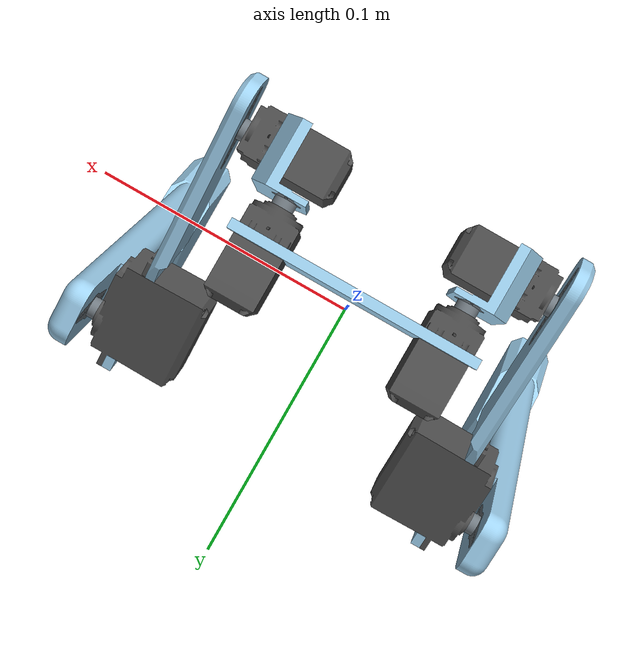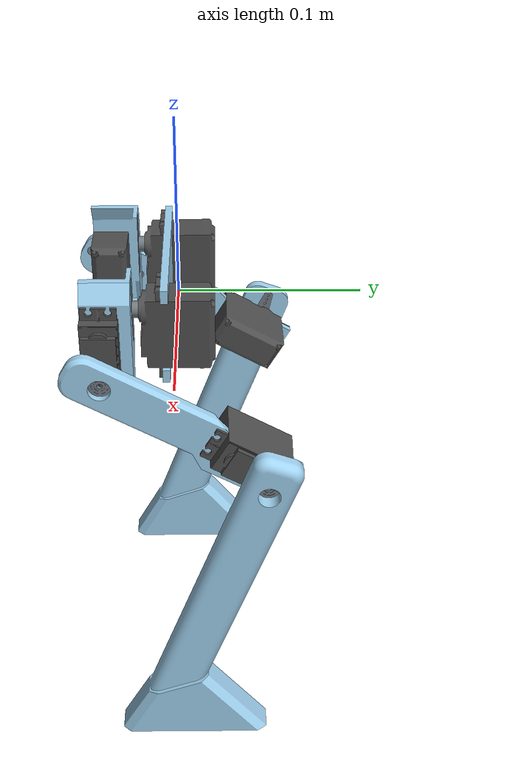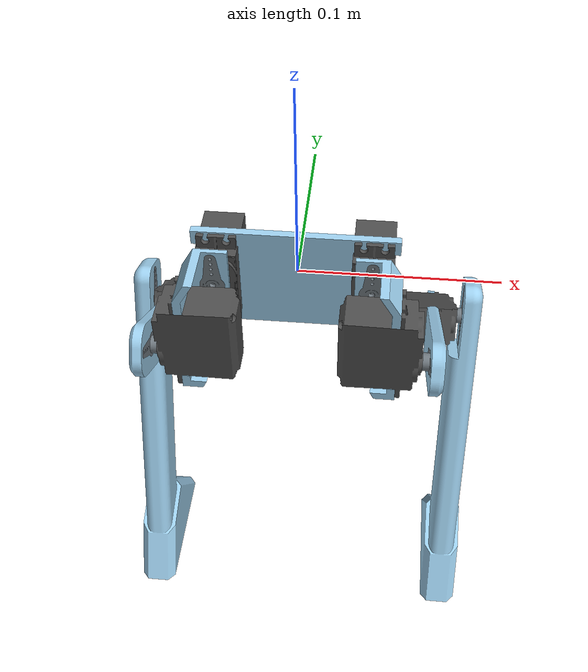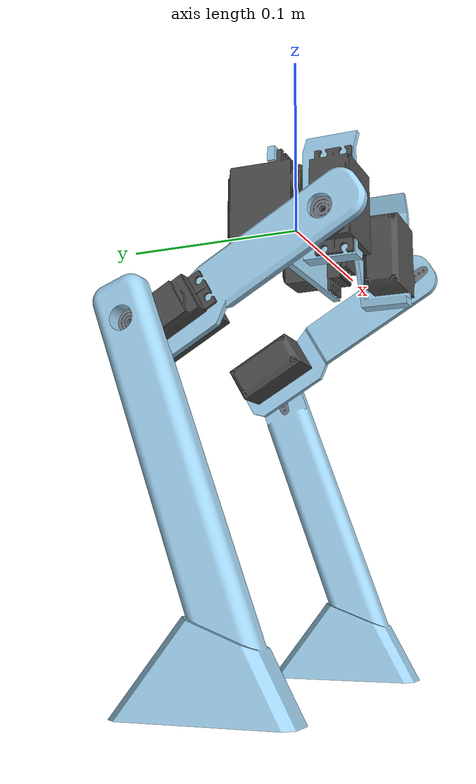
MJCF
<?xml version="1.0" ?>
<!-- Generated using onshape-to-robot -->
<!-- Onshape https://cad.onshape.com/documents/d7eef6374aced10980d655e0/w/a95c1ea2fcec3b2e30db9b5b/e/12a2a0fd368dedeacabed258 -->
<mujoco model="robot">
  <compiler angle="radian" meshdir="assets" autolimits="true"/>
  <default>
    <default class="robot">
      <joint frictionloss="0.1" armature="0.005"/>
      <position kp="50" dampratio="1"/>
      <default class="visual">
        <geom type="mesh" contype="0" conaffinity="0" group="2"/>
      </default>
      <default class="collision">
        <geom group="3"/>
      </default>
    </default>
  </default>
  <worldbody>
    <!-- Link body -->
    <body name="body" pos="0 0 0" quat="1 0 0 0" childclass="robot">
      <freejoint name="body_freejoint"/>
      <inertial pos="1.60791e-05 -0.000291688 4.34745e-05" mass="0.128457" fullinertia="3.43693e-05 0.000188026 0.000180806 0 0 8.1445e-08"/>
      <!-- Part mg996r -->
      <geom type="mesh" class="visual" pos="0.0375161 0.0199877 0.0203585" quat="0.5 0.5 0.5 -0.5" mesh="mg996r" material="mg996r_material"/>
      <geom type="mesh" class="collision" pos="0.0375161 0.0199877 0.0203585" quat="0.5 0.5 0.5 -0.5" mesh="mg996r" material="mg996r_material"/>
      <!-- Part body -->
      <geom type="mesh" class="visual" pos="1.60791e-05 -0.00400633 -0.0274906" quat="1 0 0 0" mesh="body" material="body_material"/>
      <geom type="mesh" class="collision" pos="1.60791e-05 -0.00400633 -0.0274906" quat="1 0 0 0" mesh="body" material="body_material"/>
      <!-- Part mg996r_2 -->
      <geom type="mesh" class="visual" pos="-0.0374839 0.0199877 0.0203585" quat="0.5 0.5 0.5 -0.5" mesh="mg996r" material="mg996r_material"/>
      <geom type="mesh" class="collision" pos="-0.0374839 0.0199877 0.0203585" quat="0.5 0.5 0.5 -0.5" mesh="mg996r" material="mg996r_material"/>
      <!-- Link leg_hip_l -->
      <body name="leg_hip_l" pos="0.0375161 -0.0200063 0.0100094" quat="0.5 -0.5 0.5 0.5">
        <!-- Joint from body to leg_hip_l -->
        <joint axis="0 0 1" name="hip1-l" type="hinge" range="-1.5707963267949 1.570796326794893"/>
        <inertial pos="0.0168278 -0.00558285 -0.0185862" mass="0.0633239" fullinertia="9.5947e-06 1.46442e-05 1.84718e-05 8.7959e-08 4.02355e-07 -2.065e-08"/>
        <!-- Part mg996r_3 -->
        <geom type="mesh" class="visual" pos="0.0378491 0.013994 -0.01975" quat="0 0 -0.707107 0.707107" mesh="mg996r" material="mg996r_material"/>
        <geom type="mesh" class="collision" pos="0.0378491 0.013994 -0.01975" quat="0 0 -0.707107 0.707107" mesh="mg996r" material="mg996r_material"/>
        <!-- Part mg996r_straight -->
        <geom type="mesh" class="visual" pos="0 0 -0.00575" quat="0.5 0.5 0.5 0.5" mesh="mg996r_straight" material="mg996r_straight_material"/>
        <geom type="mesh" class="collision" pos="0 0 -0.00575" quat="0.5 0.5 0.5 0.5" mesh="mg996r_straight" material="mg996r_straight_material"/>
        <!-- Part leg_hip_l -->
        <geom type="mesh" class="visual" pos="0 0 -0.00575" quat="0.5 0.5 -0.5 -0.5" mesh="leg_hip_l" material="leg_hip_l_material"/>
        <geom type="mesh" class="collision" pos="0 0 -0.00575" quat="0.5 0.5 -0.5 -0.5" mesh="leg_hip_l" material="leg_hip_l_material"/>
        <!-- Link leg_upper_l -->
        <body name="leg_upper_l" pos="0.0275 -0.026 -0.01975" quat="0 -0 -0.707107 -0.707107">
          <!-- Joint from leg_hip_l to leg_upper_l -->
          <joint axis="0 0 1" name="hip2-l" type="hinge" range="-0.5217220817381962 2.619870571851597"/>
          <inertial pos="-0.0383201 0.0659294 -0.00253348" mass="0.0743473" fullinertia="6.46873e-05 2.85406e-05 7.93556e-05 3.18196e-05 1.98232e-06 -3.73235e-06"/>
          <!-- Part mg996r_4 -->
          <geom type="mesh" class="visual" pos="-0.0554935 0.0965355 0.018244" quat="0 -0.865556 0.500812 0" mesh="mg996r" material="mg996r_material"/>
          <geom type="mesh" class="collision" pos="-0.0554935 0.0965355 0.018244" quat="0 -0.865556 0.500812 0" mesh="mg996r" material="mg996r_material"/>
          <!-- Part mg996r_straight_2 -->
          <geom type="mesh" class="visual" pos="0 0 -0.00575" quat="0.683184 0.683184 0.182372 0.182372" mesh="mg996r_straight" material="mg996r_straight_material"/>
          <geom type="mesh" class="collision" pos="0 0 -0.00575" quat="0.683184 0.683184 0.182372 0.182372" mesh="mg996r_straight" material="mg996r_straight_material"/>
          <!-- Part leg_upper_l -->
          <geom type="mesh" class="visual" pos="0 0 -0.00575" quat="0.61204 0.354128 0.61204 -0.354128" mesh="leg_upper_l" material="leg_upper_l_material"/>
          <geom type="mesh" class="collision" pos="0 0 -0.00575" quat="0.61204 0.354128 0.61204 -0.354128" mesh="leg_upper_l" material="leg_upper_l_material"/>
          <!-- Link leg_lower_l -->
          <body name="leg_lower_l" pos="-0.0503358 0.0875632 -0.02175" quat="0.865556 0 0 -0.500812">
            <!-- Joint from leg_upper_l to leg_lower_l -->
            <joint axis="0 0 1" name="knee-l" type="hinge" range="-1.4000463710821596 1.7415462825076335"/>
            <inertial pos="-0.024134 -0.106838 -0.0059757" mass="0.134801" fullinertia="0.000432979 5.69911e-05 0.000483077 -0.000106639 7.27547e-07 3.21149e-06"/>
            <!-- Part leg_lower_l -->
            <geom type="mesh" class="visual" pos="-0 -0 -0.00575" quat="0.540815 -0.455543 0.540815 0.455543" mesh="leg_lower_l" material="leg_lower_l_material"/>
            <geom type="mesh" class="collision" pos="-0 -0 -0.00575" quat="0.540815 -0.455543 0.540815 0.455543" mesh="leg_lower_l" material="leg_lower_l_material"/>
            <!-- Part mg996r_straight_3 -->
            <geom type="mesh" class="visual" pos="0 0 -0.00575" quat="0.0602959 0.0602959 0.704531 0.704531" mesh="mg996r_straight" material="mg996r_straight_material"/>
            <geom type="mesh" class="collision" pos="0 0 -0.00575" quat="0.0602959 0.0602959 0.704531 0.704531" mesh="mg996r_straight" material="mg996r_straight_material"/>
          </body>
        </body>
      </body>
      <!-- Link leg_hip_r -->
      <body name="leg_hip_r" pos="-0.0374839 -0.0200063 0.0100094" quat="0.5 -0.5 0.5 0.5">
        <!-- Joint from body to leg_hip_r -->
        <joint axis="0 0 1" name="hip1-r" type="hinge" range="-1.5707963267948974 1.5707963267948957"/>
        <inertial pos="0.0168278 0.00558285 -0.0185862" mass="0.0633239" fullinertia="9.5947e-06 1.46442e-05 1.84718e-05 -8.7959e-08 4.02355e-07 2.065e-08"/>
        <!-- Part leg_hip_r -->
        <geom type="mesh" class="visual" pos="0 -0.016 -0.00575" quat="0.5 0.5 -0.5 -0.5" mesh="leg_hip_r" material="leg_hip_r_material"/>
        <geom type="mesh" class="collision" pos="0 -0.016 -0.00575" quat="0.5 0.5 -0.5 -0.5" mesh="leg_hip_r" material="leg_hip_r_material"/>
        <!-- Part mg996r_5 -->
        <geom type="mesh" class="visual" pos="0.0378491 -0.013994 -0.01975" quat="0 0 -0.707107 -0.707107" mesh="mg996r" material="mg996r_material"/>
        <geom type="mesh" class="collision" pos="0.0378491 -0.013994 -0.01975" quat="0 0 -0.707107 -0.707107" mesh="mg996r" material="mg996r_material"/>
        <!-- Part mg996r_straight_4 -->
        <geom type="mesh" class="visual" pos="0 0 -0.00575" quat="0.5 0.5 -0.5 -0.5" mesh="mg996r_straight" material="mg996r_straight_material"/>
        <geom type="mesh" class="collision" pos="0 0 -0.00575" quat="0.5 0.5 -0.5 -0.5" mesh="mg996r_straight" material="mg996r_straight_material"/>
        <!-- Link leg_upper_r -->
        <body name="leg_upper_r" pos="0.0275 0.026 -0.01975" quat="0 -0 0.707107 -0.707107">
          <!-- Joint from leg_hip_r to leg_upper_r -->
          <joint axis="0 0 1" name="hip2-r" type="hinge" range="-2.619870571851599 0.521722081738194"/>
          <inertial pos="-0.0383201 -0.0659294 -0.00253348" mass="0.0743473" fullinertia="6.46873e-05 2.85406e-05 7.93556e-05 -3.18196e-05 1.98232e-06 3.73235e-06"/>
          <!-- Part mg996r_straight_5 -->
          <geom type="mesh" class="visual" pos="-0 0 -0.00575" quat="0.182372 0.182372 0.683184 0.683184" mesh="mg996r_straight" material="mg996r_straight_material"/>
          <geom type="mesh" class="collision" pos="-0 0 -0.00575" quat="0.182372 0.182372 0.683184 0.683184" mesh="mg996r_straight" material="mg996r_straight_material"/>
          <!-- Part mg996r_6 -->
          <geom type="mesh" class="visual" pos="-0.0554935 -0.0965355 0.018244" quat="0 -0.865556 -0.500812 0" mesh="mg996r" material="mg996r_material"/>
          <geom type="mesh" class="collision" pos="-0.0554935 -0.0965355 0.018244" quat="0 -0.865556 -0.500812 0" mesh="mg996r" material="mg996r_material"/>
          <!-- Part leg_upper_r -->
          <geom type="mesh" class="visual" pos="-0 0 -0.00105" quat="0.354128 -0.61204 -0.354128 -0.61204" mesh="leg_upper_r" material="leg_upper_r_material"/>
          <geom type="mesh" class="collision" pos="-0 0 -0.00105" quat="0.354128 -0.61204 -0.354128 -0.61204" mesh="leg_upper_r" material="leg_upper_r_material"/>
          <!-- Link leg_lower_r -->
          <body name="leg_lower_r" pos="-0.0503358 -0.0875632 -0.02175" quat="0.865556 0 0 0.500812">
            <!-- Joint from leg_upper_r to leg_lower_r -->
            <joint axis="0 0 1" name="knee-r" type="hinge" range="-1.7396400345894953 1.4019526190002978"/>
            <inertial pos="-0.0239303 0.106884 -0.00597575" mass="0.134801" fullinertia="0.000433384 5.65859e-05 0.000483077 0.000105921 7.21484e-07 -3.21313e-06"/>
            <!-- Part leg_lower_r -->
            <geom type="mesh" class="visual" pos="-0 0 0.04895" quat="0.456058 0.54038 -0.456058 0.54038" mesh="leg_lower_r" material="leg_lower_r_material"/>
            <geom type="mesh" class="collision" pos="-0 0 0.04895" quat="0.456058 0.54038 -0.456058 0.54038" mesh="leg_lower_r" material="leg_lower_r_material"/>
            <!-- Part mg996r_straight_6 -->
            <geom type="mesh" class="visual" pos="0 -0 -0.00575" quat="0.704588 0.704588 0.0596244 0.0596244" mesh="mg996r_straight" material="mg996r_straight_material"/>
            <geom type="mesh" class="collision" pos="0 -0 -0.00575" quat="0.704588 0.704588 0.0596244 0.0596244" mesh="mg996r_straight" material="mg996r_straight_material"/>
          </body>
        </body>
      </body>
    </body>
  </worldbody>
  <asset>
    <mesh file="leg_upper_l.stl"/>
    <mesh file="leg_hip_r.stl"/>
    <mesh file="leg_upper_r.stl"/>
    <mesh file="mg996r.stl"/>
    <mesh file="leg_hip_l.stl"/>
    <mesh file="leg_lower_r.stl"/>
    <mesh file="body.stl"/>
    <mesh file="mg996r_straight.stl"/>
    <mesh file="leg_lower_l.stl"/>
    <material name="mg996r_material" rgba="0.301961 0.301961 0.301961 1"/>
    <material name="body_material" rgba="0.615686 0.811765 0.929412 1"/>
    <material name="mg996r_straight_material" rgba="0.439216 0.47451 0.501961 1"/>
    <material name="leg_hip_l_material" rgba="0.615686 0.811765 0.929412 1"/>
    <material name="leg_upper_l_material" rgba="0.615686 0.811765 0.929412 1"/>
    <material name="leg_lower_l_material" rgba="0.615686 0.811765 0.929412 1"/>
    <material name="leg_hip_r_material" rgba="0.615686 0.811765 0.929412 1"/>
    <material name="leg_upper_r_material" rgba="0.615686 0.811765 0.929412 1"/>
    <material name="leg_lower_r_material" rgba="0.615686 0.811765 0.929412 1"/>
  </asset>
  <actuator>
    <position class="robot" name="hip1-l" joint="hip1-l" inheritrange="1"/>
    <position class="robot" name="hip2-l" joint="hip2-l" inheritrange="1"/>
    <position class="robot" name="knee-l" joint="knee-l" inheritrange="1"/>
    <position class="robot" name="hip1-r" joint="hip1-r" inheritrange="1"/>
    <position class="robot" name="hip2-r" joint="hip2-r" inheritrange="1"/>
    <position class="robot" name="knee-r" joint="knee-r" inheritrange="1"/>
  </actuator>
  <equality/>
</mujoco>
